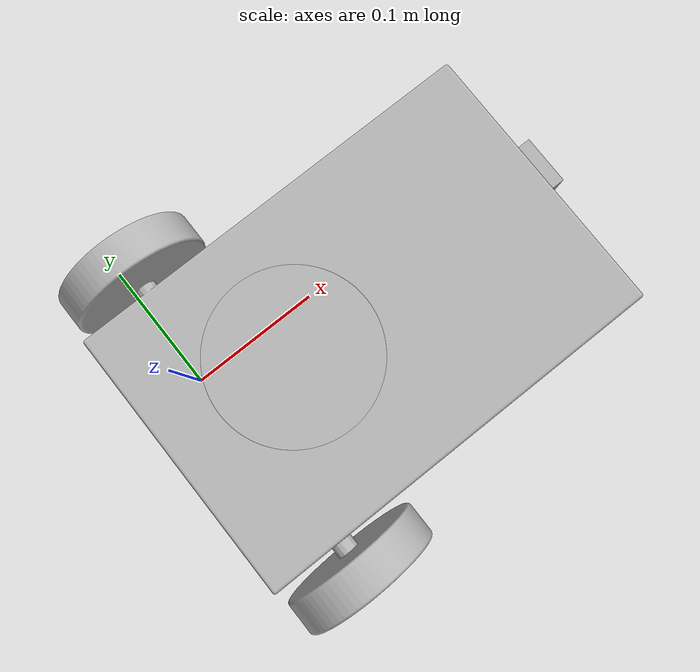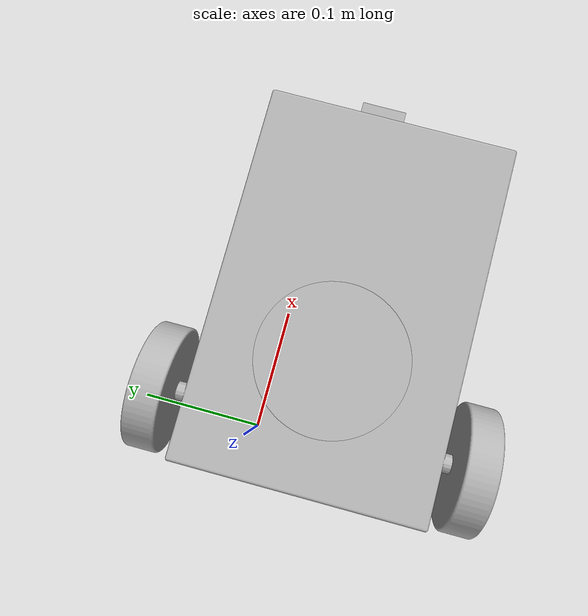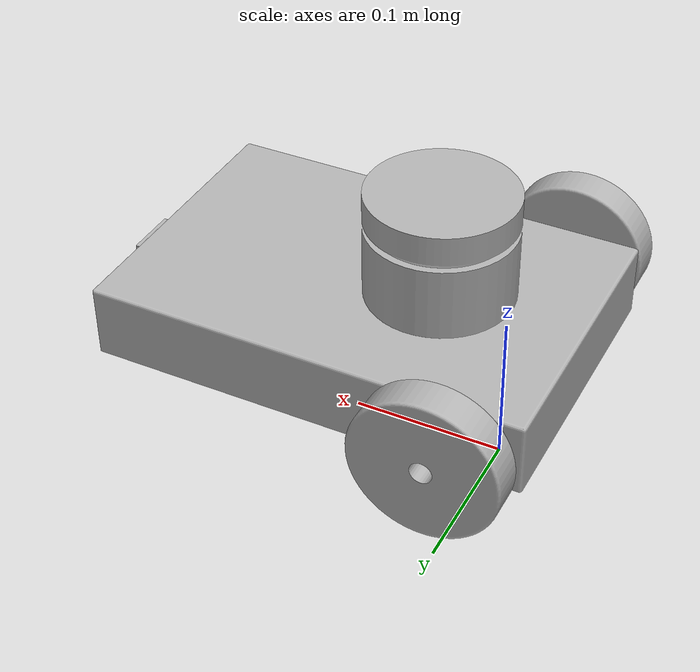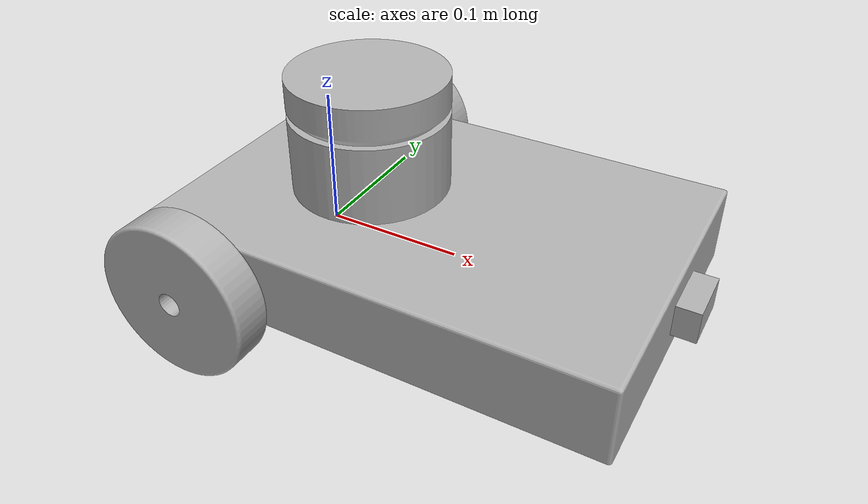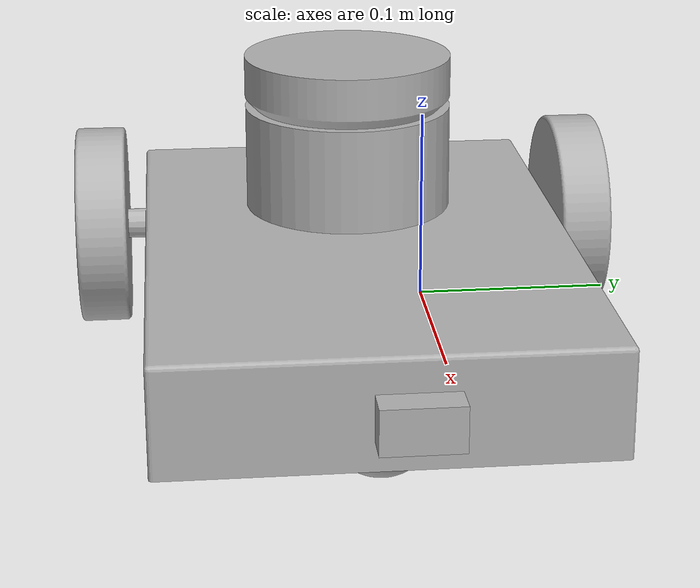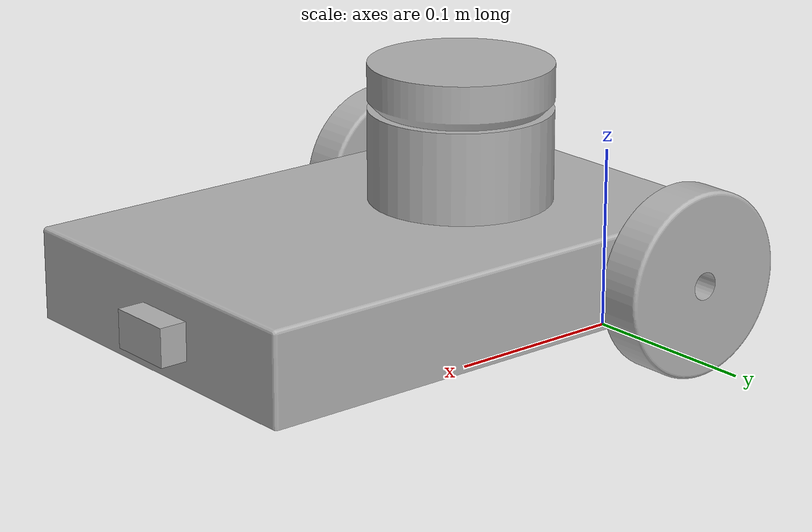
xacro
<?xml version="1.0" ?>
<robot name="robot_differential_drive" xmlns:xacro="http://www.ros.org/wiki/xacro">

<xacro:include filename="$(find robot_differential_drive_description)/urdf/materials.xacro" />
<xacro:include filename="$(find robot_differential_drive_description)/urdf/robot_differential_drive.trans" />
<xacro:include filename="$(find robot_differential_drive_description)/urdf/robot_differential_drive.gazebo" />
<link name="base_link">
  <inertial>
    <origin xyz="0.10824214180051812 -0.04567748155625664 0.05577696731773351" rpy="0 0 0"/>
    <mass value="3.59892116004878"/>
    <inertia ixx="0.012562" iyy="0.026717" izz="0.035941" ixy="-0.0" iyz="0.0" ixz="0.000918"/>
  </inertial>
  <visual>
    <origin xyz="0 0 0" rpy="0 0 0"/>
    <geometry>
      <mesh filename="package://robot_differential_drive_description/meshes/base_link.stl" scale="0.001 0.001 0.001"/>
    </geometry>
    <material name="silver"/>
  </visual>
  <collision>
    <origin xyz="0 0 0" rpy="0 0 0"/>
    <geometry>
      <mesh filename="package://robot_differential_drive_description/meshes/base_link.stl" scale="0.001 0.001 0.001"/>
    </geometry>
  </collision>
</link>

<link name="right_wheel_1">
  <inertial>
    <origin xyz="3.744771074360581e-07 -0.012500481556256632 0.0" rpy="0 0 0"/>
    <mass value="0.17799934197303036"/>
    <inertia ixx="0.000123" iyy="0.000227" izz="0.000123" ixy="0.0" iyz="-0.0" ixz="0.0"/>
  </inertial>
  <visual>
    <origin xyz="-0.014129 0.155677 -0.05" rpy="0 0 0"/>
    <geometry>
      <mesh filename="package://robot_differential_drive_description/meshes/right_wheel_1.stl" scale="0.001 0.001 0.001"/>
    </geometry>
    <material name="silver"/>
  </visual>
  <collision>
    <origin xyz="-0.014129 0.155677 -0.05" rpy="0 0 0"/>
    <geometry>
      <mesh filename="package://robot_differential_drive_description/meshes/right_wheel_1.stl" scale="0.001 0.001 0.001"/>
    </geometry>
  </collision>
</link>

<link name="left_wheel_1">
  <inertial>
    <origin xyz="3.744771436137162e-07 0.012499518443743349 6.938893903907228e-18" rpy="0 0 0"/>
    <mass value="0.1779993419730304"/>
    <inertia ixx="0.000123" iyy="0.000227" izz="0.000123" ixy="0.0" iyz="0.0" ixz="0.0"/>
  </inertial>
  <visual>
    <origin xyz="-0.014129 -0.064323 -0.05" rpy="0 0 0"/>
    <geometry>
      <mesh filename="package://robot_differential_drive_description/meshes/left_wheel_1.stl" scale="0.001 0.001 0.001"/>
    </geometry>
    <material name="silver"/>
  </visual>
  <collision>
    <origin xyz="-0.014129 -0.064323 -0.05" rpy="0 0 0"/>
    <geometry>
      <mesh filename="package://robot_differential_drive_description/meshes/left_wheel_1.stl" scale="0.001 0.001 0.001"/>
    </geometry>
  </collision>
</link>

<link name="caster_1">
  <inertial>
    <origin xyz="-0.049999625522874486 -4.815562566484743e-07 -0.009375000000000001" rpy="0 0 0"/>
    <mass value="0.2568906492779154"/>
    <inertia ixx="4.2e-05" iyy="4.2e-05" izz="6.4e-05" ixy="0.0" iyz="0.0" ixz="0.0"/>
  </inertial>
  <visual>
    <origin xyz="-0.264129 0.045677 -0.025" rpy="0 0 0"/>
    <geometry>
      <mesh filename="package://robot_differential_drive_description/meshes/caster_1.stl" scale="0.001 0.001 0.001"/>
    </geometry>
    <material name="silver"/>
  </visual>
  <collision>
    <origin xyz="-0.264129 0.045677 -0.025" rpy="0 0 0"/>
    <geometry>
      <mesh filename="package://robot_differential_drive_description/meshes/caster_1.stl" scale="0.001 0.001 0.001"/>
    </geometry>
  </collision>
</link>

<link name="lidar_1">
  <inertial>
    <origin xyz="3.744771255170809e-07 -4.815562566554132e-07 0.01271329027872195" rpy="0 0 0"/>
    <mass value="1.5115445803512537"/>
    <inertia ixx="0.001005" iyy="0.001005" izz="0.001857" ixy="0.0" iyz="0.0" ixz="-0.0"/>
  </inertial>
  <visual>
    <origin xyz="-0.064129 0.045677 -0.125" rpy="0 0 0"/>
    <geometry>
      <mesh filename="package://robot_differential_drive_description/meshes/lidar_1.stl" scale="0.001 0.001 0.001"/>
    </geometry>
    <material name="silver"/>
  </visual>
  <collision>
    <origin xyz="-0.064129 0.045677 -0.125" rpy="0 0 0"/>
    <geometry>
      <mesh filename="package://robot_differential_drive_description/meshes/lidar_1.stl" scale="0.001 0.001 0.001"/>
    </geometry>
  </collision>
</link>

<link name="camera_1">
  <inertial>
    <origin xyz="0.007500374477125482 0.009999518443743333 -6.938893903907228e-18" rpy="0 0 0"/>
    <mass value="0.011883648677994093"/>
    <inertia ixx="2e-06" iyy="1e-06" izz="2e-06" ixy="0.0" iyz="-0.0" ixz="-0.0"/>
  </inertial>
  <visual>
    <origin xyz="-0.264129 0.045677 -0.049" rpy="0 0 0"/>
    <geometry>
      <mesh filename="package://robot_differential_drive_description/meshes/camera_1.stl" scale="0.001 0.001 0.001"/>
    </geometry>
    <material name="silver"/>
  </visual>
  <collision>
    <origin xyz="-0.264129 0.045677 -0.049" rpy="0 0 0"/>
    <geometry>
      <mesh filename="package://robot_differential_drive_description/meshes/camera_1.stl" scale="0.001 0.001 0.001"/>
    </geometry>
  </collision>
</link>

<joint name="Revolute 1" type="continuous">
  <origin xyz="0.014129 -0.155677 0.05" rpy="0 0 0"/>
  <parent link="base_link"/>
  <child link="right_wheel_1"/>
  <axis xyz="0.0 1.0 0.0"/>
</joint>

<joint name="Revolute 2" type="continuous">
  <origin xyz="0.014129 0.064323 0.05" rpy="0 0 0"/>
  <parent link="base_link"/>
  <child link="left_wheel_1"/>
  <axis xyz="0.0 1.0 0.0"/>
</joint>

<joint name="Rigid 3" type="fixed">
  <origin xyz="0.264129 -0.045677 0.025" rpy="0 0 0"/>
  <parent link="base_link"/>
  <child link="caster_1"/>
</joint>

<joint name="Rigid 4" type="fixed">
  <origin xyz="0.064129 -0.045677 0.125" rpy="0 0 0"/>
  <parent link="base_link"/>
  <child link="lidar_1"/>
</joint>

<joint name="Rigid 5" type="fixed">
  <origin xyz="0.264129 -0.045677 0.049" rpy="0 0 0"/>
  <parent link="base_link"/>
  <child link="camera_1"/>
</joint>

</robot>

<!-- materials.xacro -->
<robot name="robot_differential_drive" xmlns:xacro="http://www.ros.org/wiki/xacro" >

<material name="silver">
  <color rgba="0.700 0.700 0.700 1.000"/>
</material>

</robot>

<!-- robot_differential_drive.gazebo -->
<robot name="robot_differential_drive" xmlns:xacro="http://www.ros.org/wiki/xacro" >

<xacro:property name="body_color" value="Gazebo/Silver" />

<gazebo>
  <plugin name="control" filename="libgazebo_ros_control.so"/>
</gazebo>
<gazebo reference="base_link">
  <material>${body_color}</material>
  <mu1>0.2</mu1>
  <mu2>0.2</mu2>
  <selfCollide>true</selfCollide>
  <gravity>true</gravity>
</gazebo>

<gazebo reference="right_wheel_1">
  <material>${body_color}</material>
  <mu1>15000</mu1>
  <mu2>15000</mu2>
  <selfCollide>true</selfCollide>
</gazebo>

<gazebo reference="left_wheel_1">
  <material>${body_color}</material>
  <mu1>15000</mu1>
  <mu2>15000</mu2>
  <selfCollide>true</selfCollide>
</gazebo>

<gazebo reference="caster_1">
  <material>${body_color}</material>
  <mu1>0.1</mu1>
  <mu2>0.1</mu2>
  <selfCollide>true</selfCollide>
</gazebo>

<gazebo reference="lidar_1">
  <material>${body_color}</material>
  <mu1>0.2</mu1>
  <mu2>0.2</mu2>
  <selfCollide>true</selfCollide>
</gazebo>

<gazebo reference="camera_1">
  <material>${body_color}</material>
  <mu1>0.2</mu1>
  <mu2>0.2</mu2>
  <selfCollide>true</selfCollide>
</gazebo>

<gazebo>
  <plugin name="gazebo_ros_control" filename="libgazebo_ros_control.so"/>
</gazebo>

<gazebo>
  <plugin name="gazebo_ros_control" filename="libgazebo_ros_control.so"/>
</gazebo>

<gazebo>
  <plugin name="differential_drive_controller" filename="libgazebo_ros_diff_drive.so">
    <!-- Plugin update rate in Hz -->
    <updateRate>20</updateRate> <!-- Adjusted to a reasonable rate -->

    <!-- Name of left joint, defaults to `left_joint` -->
    <leftJoint>Revolute 2</leftJoint> <!-- Ensure joint names match URDF -->

    <!-- Name of right joint, defaults to `right_joint` -->
    <rightJoint>Revolute 1</rightJoint> <!-- Ensure joint names match URDF -->

    <!-- The distance from the center of one wheel to the other, in meters -->
    <wheelSeparation>0.12</wheelSeparation>

    <!-- Diameter of the wheels, in meters -->
    <wheelDiameter>0.10</wheelDiameter>

    <!-- Wheel acceleration, in rad/s^2 -->
    <wheelAcceleration>1.0</wheelAcceleration>

    <!-- Maximum torque which the wheels can produce, in Nm -->
    <wheelTorque>20</wheelTorque>

    <!-- Topic to receive geometry_msgs/Twist message commands -->
    <commandTopic>cmd_vel</commandTopic>

    <!-- Commenting out the following lines to prevent Gazebo from publishing odometry -->
    <!-- Topic to publish nav_msgs/Odometry messages -->
    <odometryTopic>odom</odometryTopic>

    <!-- Odometry frame -->
<odometryFrame>odom</odometryFrame>

    <!-- Robot frame to calculate odometry from -->
    <robotBaseFrame>base_link</robotBaseFrame>

    <!-- Odometry source, 0 for ENCODER, 1 for WORLD -->
    <odometrySource>0</odometrySource> <!-- Use encoder data -->

    <!-- Set to true to publish transforms for the wheel links -->
    <publishWheelTF>false</publishWheelTF>

    <!-- Set to true to publish transforms for the odometry -->
    <publishOdom>false</publishOdom> <!-- Disable odom publishing -->

    <!-- Set to true to publish sensor_msgs/JointState on /joint_states for the wheel joints -->
    <publishWheelJointState>true</publishWheelJointState>

    <!-- Set to true to swap right and left wheels -->
    <legacyMode>false</legacyMode> <!-- Ensure wheels are not swapped unless needed -->

  </plugin>
</gazebo>

  <!-- camera -->
  <gazebo reference="camera_1">
    <sensor type="camera" name="camera1">
      <update_rate>30.0</update_rate>
      <camera name="head">
        <horizontal_fov>1.3962634</horizontal_fov>
        <image>
          <width>800</width>
          <height>800</height>
          <format>R8G8B8</format>
        </image>
        <clip>
          <near>0.02</near>
          <far>300</far>
        </clip>
      </camera>
      <plugin name="camera_controller" filename="libgazebo_ros_camera.so">
        <alwaysOn>true</alwaysOn>
        <updateRate>0.0</updateRate>
        <cameraName>rrbot/camera1</cameraName>
        <imageTopicName>image_raw</imageTopicName>
        <cameraInfoTopicName>camera_info</cameraInfoTopicName>
        <frameName>camera_link</frameName>
        <hackBaseline>0.07</hackBaseline>
        <distortionK1>0.0</distortionK1>
        <distortionK2>0.0</distortionK2>
        <distortionK3>0.0</distortionK3>
        <distortionT1>0.0</distortionT1>
        <distortionT2>0.0</distortionT2>
      </plugin>
    </sensor>
  </gazebo>

</robot>
